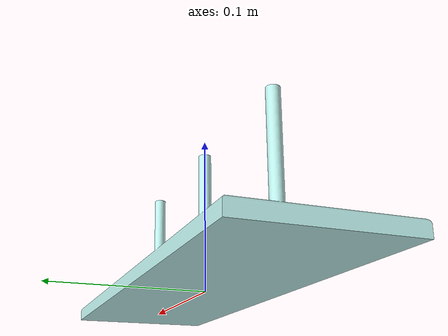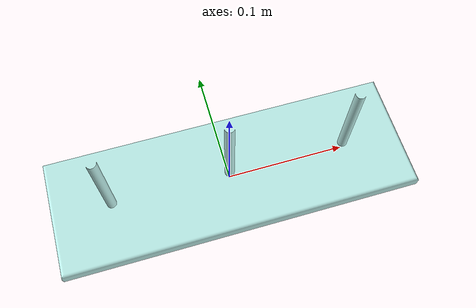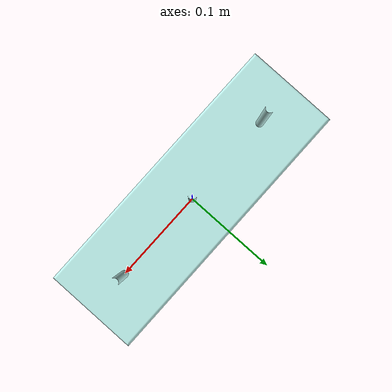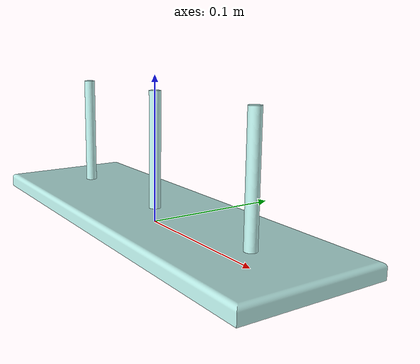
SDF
<?xml version="1.0" ?>
<sdf version="1.6">
<model name="towerbase">
    <link name="towerbase_link">
        <frame name="towerbase_frame"><pose>0 0 0 0 -0 0</pose></frame>
        <visual name="towerbase_0_towerbase_visual">
            <pose>0 0 0 0 -0 0</pose>
            <geometry>
                <mesh>
                    <uri>file:///home/leo/workspace/ur_gz/src/Universal_Robots_ROS2_Ignition_Simulation/ur_simulation_gz/sdf/models/towerbase/towerbase.dae</uri>
                </mesh>
            </geometry>
            <material>
                <ambient>0.73725490196078435901 0.9372549019607843146 0.91764705882352937127 1</ambient>
                <diffuse>0.73725490196078435901 0.9372549019607843146 0.91764705882352937127 1</diffuse>
                <specular>0.1 0.1 0.1 1</specular>
                <emissive>0 0 0 0</emissive>
            </material>
        </visual>
        <collision name="towerbase_0_towerbase_visual">
            <pose>0 0 0 0 -0 0</pose>
            <geometry>
                <mesh>
                    <uri>file:///home/leo/workspace/ur_gz/src/Universal_Robots_ROS2_Ignition_Simulation/ur_simulation_gz/sdf/models/towerbase/towerbase.stl</uri>
                </mesh>
            </geometry>
            <surface>
            <friction>
                <ode>
                    <mu>0.05</mu> <!-- Coeficiente de fricção estática -->
                    <mu2>0.01</mu2> <!-- Coeficiente de fricção dinâmica -->
                </ode>
                <torsional>
                    <coefficient>0.05</coefficient> <!-- Coeficiente de fricção torsional -->
                </torsional>
            </friction>
        </surface>
        </collision>
        <inertial>
            <pose>4.6403630397362222697e-17 -7.9739324980047018321e-18 0.0076524240229390626603 0 0 0</pose>
            <mass>0.85676684417617976486</mass>
            <inertia>
                <ixx>0.00079776290276809967879</ixx><ixy>0.000000000000000000000</ixy><ixz>0</ixz>
                <iyy>0.0064995909410444250784</iyy><iyz>0</iyz>
                <izz>0.0070356536370976569678</izz>
            </inertia>
        </inertial>
    </link>

</model>
</sdf>
